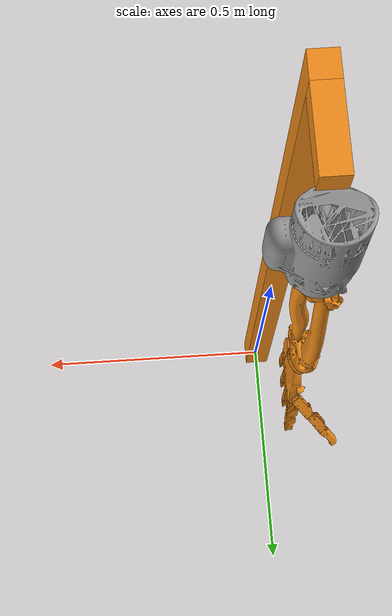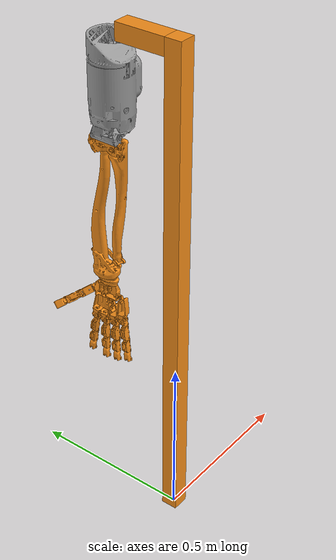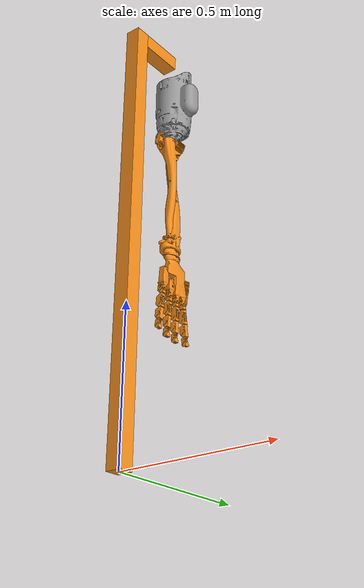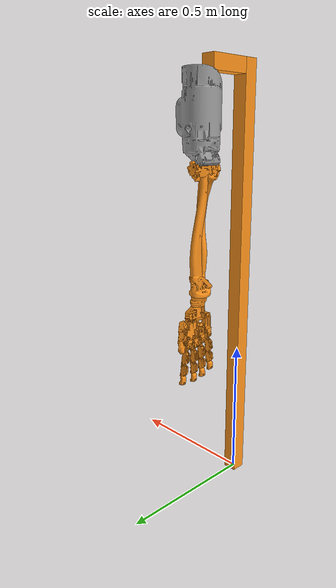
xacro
<?xml version="1.0"?>
<robot name="rrbot" xmlns:xacro="http://www.ros.org/wiki/xacro">

  <!-- Constants for robot dimensions -->
  <xacro:property name="PI" value="3.1415926535897931"/>
  <xacro:property name="mass" value="2.0" /> <!-- arbitrary value for mass -->
  <xacro:property name="width" value="0.05" /> <!-- Square dimensions (widthxwidth) of beams -->
  <xacro:property name="ry" value="0.016" />
  <xacro:property name="rz" value="0.02" />
  <xacro:property name="height1" value="1.5" /> <!-- Link 1 -->
  <xacro:property name="height2" value="0.25" /> <!-- Link 2 -->
  <xacro:property name="height3" value="0.4" /> <!-- Link 3 -->
  <xacro:property name="height4" value="0.4" /><!-- Link4 -->

  <xacro:property name="height_w1" value="0.03" />
  <xacro:property name="width_w1" value="0.02" />
  <xacro:property name="mass_w1" value="1" />

  <xacro:property name="height_w2" value="0.03" />
  <xacro:property name="width_w2" value="0.02" />
  <xacro:property name="mass_w2" value="1" />

  <xacro:property name="height_p" value="0.1" />
  <xacro:property name="width_p" value="0.09" />
  <xacro:property name="mass_p" value="1" />

  <xacro:property name="height_t" value="0.03" />
  <xacro:property name="width_t" value="0.02" />
  <xacro:property name="mass_t" value="1" />

  <xacro:property name="height_i" value="0.03" />
  <xacro:property name="width_i" value="0.02" />
  <xacro:property name="mass_i" value="1" />

  <xacro:property name="height_m" value="0.03" />
  <xacro:property name="width_m" value="0.02" />
  <xacro:property name="mass_m" value="1" />

  <xacro:property name="height_s" value="0.03" />
  <xacro:property name="width_s" value="0.02" />
  <xacro:property name="mass_s" value="1" />

  <xacro:property name="height_l" value="0.03" />
  <xacro:property name="width_l" value="0.02" />
  <xacro:property name="mass_l" value="1" />

  <xacro:property name="rl" value="${sqrt((rz+height4)*(rz+height4)+ry*ry)}" />
  <xacro:property name="model_scale" value="0.6 0.6 0.6" />
  <xacro:property name="model_humerus" value="package://rrbot_description/meshes/humerus_0.1_r.dae" />
  <xacro:property name="model_radius" value="package://rrbot_description/meshes/radius_0.1_t.dae" />
  <xacro:property name="model_ulna" value="package://rrbot_description/meshes/ulna_0.1_r.dae" />
  <xacro:property name="model_hand" value="package://rrbot_description/meshes/hand.dae" />
  <xacro:property name="model_wrist1" value="package://rrbot_description/meshes/hand/wrist1.dae" />
  <xacro:property name="model_wrist2" value="package://rrbot_description/meshes/hand/wrist2.dae" />
  <xacro:property name="model_palm" value="package://rrbot_description/meshes/hand/palm.dae" />
<xacro:property name="model_thumb1" value="package://rrbot_description/meshes/hand/thumb1.dae" />
<xacro:property name="model_thumb2" value="package://rrbot_description/meshes/hand/thumb2.dae" />
<xacro:property name="model_thumb3" value="package://rrbot_description/meshes/hand/thumb3.dae" />
<xacro:property name="model_index1" value="package://rrbot_description/meshes/hand/index1.dae" />
<xacro:property name="model_index2" value="package://rrbot_description/meshes/hand/index2.dae" />
<xacro:property name="model_index3" value="package://rrbot_description/meshes/hand/index3.dae" />

  <!-- Import all Gazebo-customization elements, including Gazebo colors -->
  <xacro:include filename="$(find rrbot_description)/urdf/rrbot.gazebo" />
  <!-- Import Rviz colors -->
  <xacro:include filename="$(find rrbot_description)/urdf/materials.xacro" />

  <!-- Used for fixing robot to Gazebo 'base_link' -->
  <link name="world"/>

  <joint name="fixed" type="fixed">
    <parent link="world"/>
    <child link="link1"/>
  </joint>

  <!-- Base Link -->
  <link name="link1">
    <collision>
      <origin xyz="0 0 ${height1/2}" rpy="0 0 0"/>
      <geometry>
	<box size="${width} ${width} ${height1}"/>
      </geometry>
    </collision>

    <visual>
      <origin xyz="0 0 ${height1/2}" rpy="0 0 0"/>
      <geometry>
	<box size="${width} ${width} ${height1}"/>
      </geometry>
      <material name="orange"/>
    </visual>

    <inertial>
      <origin xyz="0 0 ${height1/2}" rpy="0 0 0"/>
      <mass value="${mass}"/>
      <inertia
	  ixx="${mass / 1.0  * (width*width + height1*height1)}" ixy="0.0" ixz="0.0"
	  iyy="${mass / 1.0  * (height1*height1 + width*width)}" iyz="0.0"
	  izz="${mass / 1.0  * (width*width + width*width)}"/>
    </inertial>
  </link>

  <joint name="joint_bridge" type="fixed">
    <parent link="link1"/>
    <child link="link_bridge"/>
	<origin xyz="0 ${width} ${height1 - width/2}" rpy="0 0 0"/>
    <axis xyz="0 1 0"/>
    <dynamics damping="0.7"/>
  </joint>

  <link name="link_bridge">
    <collision>
		<origin xyz="0 ${width*3/2} 0" rpy="0 0 0"/>
      <geometry>
	<box size="${width} ${width*3} ${width}"/>
      </geometry>
    </collision>

    <visual>
		<origin xyz="0 ${width} 0" rpy="0 0 0"/>
      <geometry>
	<box size="${width} ${width*3} ${width}"/>
      </geometry>
      <material name="orange"/>
    </visual>

    <inertial>
		<origin xyz="0 ${width} 0" rpy="0 0 0"/>
      <mass value="${mass}"/>
      <inertia
	  ixx="${mass / 1.0  * (width*width + width*width)}" ixy="0.0" ixz="0.0"
	  iyy="${mass / 1.0  * (width*width + width*width)}" iyz="0.0"
	  izz="${mass / 1.0  * (width*width + width*width)}"/>
    </inertial>
  </link>

  <joint name="joint1" type="fixed">
    <parent link="link_bridge"/>
    <child link="link2"/>
	<origin xyz="0 ${width*3} -0.05" rpy="0 ${PI} 0"/>
    <axis xyz="0 1 0"/>
    <dynamics damping="0.7"/>
  </joint>

  <!-- Middle Link -->
  <link name="link2">
    <collision>
      <origin xyz="0 0 ${height2/2}" rpy="0 0 0"/>
      <geometry>
	<!--box size="${width} ${width} ${height2}"/-->
	<mesh filename="${model_humerus}" scale="${model_scale}" />

      </geometry>
    </collision>

    <visual>
      <origin xyz="0 0 ${height2/2}" rpy="0 0 0"/>
      <geometry>
		  <!--box size="${width} ${width} ${height2}"/-->
		<mesh filename="${model_humerus}" scale="${model_scale}" />
      </geometry>
      <!--material name="black"/-->
    </visual>

    <inertial>
      <origin xyz="0 0 ${height2/2}" rpy="0 0 0"/>
      <mass value="${mass}"/>
      <inertia
	  ixx="${mass / 1.0  * (width*width + height2*height2)}" ixy="0.0" ixz="0.0"
	  iyy="${mass / 1.0  * (height2*height2 + width*width)}" iyz="0.0"
	  izz="${mass / 1.0  * (width*width + width*width)}"/>
    </inertial>
  </link>

  <joint name="joint2" type="continuous">
    <parent link="link2"/>
    <child link="link3"/>
	<origin xyz="0.04 0 ${height2}" rpy="0 0 0"/>
	<axis xyz="0 1 0"/>
    <dynamics damping="0.7"/>
  </joint>

  <link name="link3">
    <collision>
		<origin xyz="0 0 ${height3/2}" rpy="0 0 0"/>
      <geometry>
		  <!--box size="${width} ${width} ${height3}"/-->
		<mesh filename="${model_ulna}" scale="${model_scale}" />

      </geometry>
    </collision>

    <visual>
		<origin xyz="0 0 ${height3/2}" rpy="0 0 0"/>
      <geometry>
	<!--box size="${width} ${width} ${height3}"/-->
	<mesh filename="${model_ulna}" scale="${model_scale}" />

      </geometry>
      <material name="orange"/>
    </visual>

    <inertial>
		<origin xyz="0 0 ${height3/2}" rpy="0 0 0"/>
      <mass value="${mass}"/>
      <inertia
	  ixx="${mass / 1.0  * (width*width + height3*height3)}" ixy="0.0" ixz="0.0"
	  iyy="${mass / 1.0  * (height3*height3 + width*width)}" iyz="0.0"
	  izz="${mass / 1.0  * (width*width + width*width)}"/>
    </inertial>
  </link>

  <joint name="joint3" type="continuous">
    <parent link="link3"/>
    <child link="link4"/>
	<origin xyz="-0.014 ${ry} ${rz}" rpy="0 0 0"/>
	<axis xyz="0 ${-ry/rl} ${(rz+height4)/rl}"/>
	<!--axis xyz="0 0 1" /-->
    <dynamics damping="0.7"/>
  </joint>

  <link name="link4">
    <collision>
		<origin xyz="0 0 ${height4/2}" rpy="0 0 0"/>
      <geometry>
		  <!--box size="${width} ${width} ${height4}"/-->
     	<mesh filename="${model_radius}" scale="${model_scale}" />
      </geometry>
    </collision>

    <visual>
		<origin xyz="0 0 ${height4/2}" rpy="0 0 0"/>
      <geometry>
		<!--box size="${width} ${width} ${height4}"/-->
		<mesh filename="${model_radius}" scale="${model_scale}" />

      </geometry>
      <material name="orange"/>
    </visual>

    <inertial>
		<origin xyz="0 0 ${height4/2}" rpy="0 0 0"/>
      <mass value="${mass}"/>
      <inertia
	  ixx="${mass / 1.0  * (width*width + height4*height4)}" ixy="0.0" ixz="0.0"
	  iyy="${mass / 1.0  * (height4*height4 + width*width)}" iyz="0.0"
	  izz="${mass / 1.0  * (width*width + width*width)}"/>
    </inertial>
  </link>

<!--********************* WRIST *********************** -->
  <joint name="wrist_joint1" type="continuous">
    <parent link="link4"/>
    <child link="wrist_link1"/>
		<origin xyz="-0.0025 0 ${height4-0.01}" rpy="0 0 0"/>
	<axis xyz="0 1 0"/>
    <dynamics damping="0.7"/>
  </joint>

  <link name="wrist_link1">
    <collision>
		<origin xyz="0 0 ${height_w1/2}" rpy="0 0 0"/>
      <geometry>
		  <!--box size="${width_w1} ${width_w1*4} ${height_w1}"/-->
     	<mesh filename="${model_wrist1}" scale="0 0 0" />
      </geometry>
    </collision>

    <visual>
		<origin xyz="0 0 ${height_w1/2}" rpy="0 0 0"/>
      <geometry>
		<!--box size="${width_w1} ${width_w1*4} ${height_w1}"/-->
		<mesh filename="${model_wrist1}" scale="${model_scale}" />
      </geometry>
      <material name="orange"/>
    </visual>

    <inertial>
		<origin xyz="0 0 ${height_w1/2}" rpy="0 0 0"/>
      <mass value="${mass_w1}"/>
      <inertia
	  ixx="${mass_w1 / 1.0  * (width_w1*width_w1 + height_w1*height_w1)}" ixy="0.0" ixz="0.0"
	  iyy="${mass_w1 / 1.0  * (height_w1*height_w1 + width_w1*width_w1)}" iyz="0.0"
	  izz="${mass_w1 / 1.0  * (width_w1*width_w1 + width_w1*width_w1)}"/>
    </inertial>
  </link>

  <joint name="wrist_joint2" type="continuous">
    <parent link="wrist_link1"/>
    <child link="wrist_link2"/>
		<origin xyz="-0.01 0 ${height_w2-0.001}" rpy="0 0 0"/>
	<axis xyz="0 1 0"/>
    <dynamics damping="0.7"/>
  </joint>

  <link name="wrist_link2">
    <collision>
		<origin xyz="0 0 ${height_w2/2}" rpy="0 0 0"/>
      <geometry>
		  <!--box size="${width_w2} ${width_w2*4} ${height_w2}"/-->
     	<mesh filename="${model_wrist2}" scale="0 0 0" />
      </geometry>
    </collision>

    <visual>
		<origin xyz="0 0 ${height_w2/2}" rpy="0 0 0"/>
      <geometry>
		<!--box size="${width_w2} ${width_w2*4} ${height_w2}"/-->
		<mesh filename="${model_wrist2}" scale="${model_scale}" />
      </geometry>
      <material name="orange"/>
    </visual>

    <inertial>
		<origin xyz="0 0 ${height_w2/2}" rpy="0 0 0"/>
      <mass value="${mass_w2}"/>
      <inertia
	  ixx="${mass_w2 / 1.0  * (width_w2*width_w2 + height_w2*height_w2)}" ixy="0.0" ixz="0.0"
	  iyy="${mass_w2 / 1.0  * (height_w2*height_w2 + width_w2*width_w2)}" iyz="0.0"
	  izz="${mass_w2 / 1.0  * (width_w2*width_w2 + width_w2*width_w2)}"/>
    </inertial>
  </link>

  <joint name="wrist_connector" type="fixed">
	  <parent link="wrist_link2"/>
	  <child link="palm"/>
	  <origin xyz="-0.009 0.013 ${height_w2+0.013}" rpy="0 0 0"/>
  </joint>

<!--**************** Palm ********************-->
  <link name="palm">
    <collision>
		<origin xyz="0 0 ${height_p/2}" rpy="0 0 0"/>
      <geometry>
		  <!--box size="${width/2} ${width_p} ${height_p}"/-->
		<mesh filename="${model_palm}" scale="${model_scale}" />

      </geometry>
    </collision>

    <visual>
		<origin xyz="0 0 ${height_p/2}" rpy="0 0 0"/>
      <geometry>
		  <!--box size="${width/2} ${width_p} ${height_p}"/-->
		<mesh filename="${model_palm}" scale="${model_scale}" />

      </geometry>
      <material name="orange"/>
    </visual>

    <inertial>
		<origin xyz="0 0 ${height_p/2}" rpy="0 0 0"/>
      <mass value="${mass}"/>
      <inertia
	  ixx="${mass*3 / 1.0  * (width_p*width_p + height_p*height_p)}" ixy="0.0" ixz="0.0"
	  iyy="${mass*3 / 1.0  * (height_p*height_p + width*width)}" iyz="0.0"
	  izz="${mass*3 / 1.0  * (width_p*width_p + width*width)}"/>
    </inertial>
  </link>

  <!--******************* THUMB **********************-->

  <joint name="thumb_joint1" type="continuous">
    <parent link="palm"/>
    <child link="thumb_link1"/>
	<origin xyz="0.01 ${width_p/2+0.02} 0.025" rpy="${-PI/3} ${PI/8} ${-PI/6}"/>
	<axis xyz="0 1 0"/>
    <dynamics damping="0.7"/>
  </joint>

  <link name="thumb_link1">
    <collision>
		<origin xyz="0 0 ${height_t/2}" rpy="0 0 0"/>
      <geometry>
		  <box size="${width_t} ${width_t} ${height_t}"/>
      </geometry>
    </collision>

    <visual>
		<origin xyz="0 0 ${height_t/2}" rpy="0 0 0"/>
      <geometry>
		  <!--box size="${width_t} ${width_t} ${height_t}"/-->
		  <mesh filename="${model_thumb1}" scale="${model_scale}" />
      </geometry>
      <material name="orange"/>
    </visual>

    <inertial>
		<origin xyz="0 0 ${height_t/2}" rpy="0 0 0"/>
      <mass value="${mass_t}"/>
      <inertia
		  ixx="${mass_t * (width_t*width_t + height_t*height_t) / 1.0  }" ixy="0.0" ixz="0.0"
		  iyy="${mass_t * (height_t*height_t + width_t*width_t) / 1.0  }" iyz="0.0"
		  izz="${mass_t * (width_t*width_t + width_t*width_t) / 1.0  }"/>
    </inertial>
  </link>

  <joint name="thumb_joint2" type="continuous">
    <parent link="thumb_link1"/>
    <child link="thumb_link2"/>
	<origin xyz="0 0 ${height_t+0.01}" rpy="0 0 0"/>
	<axis xyz="0 1 0"/>
    <dynamics damping="0.7"/>
  </joint>

  <link name="thumb_link2">
    <collision>
		<origin xyz="0 0 ${height_t/2}" rpy="0 0 0"/>
      <geometry>
		  <box size="${width_t} ${width_t} ${height_t}"/>

      </geometry>
    </collision>

    <visual>
		<origin xyz="0 0 ${height_t/2}" rpy="0 0 0"/>
      <geometry>
		  <!--box size="${width_t} ${width_t} ${height_t}"/-->
		  <mesh filename="${model_thumb2}" scale="${model_scale}" />

      </geometry>
      <material name="orange"/>
    </visual>

    <inertial>
		<origin xyz="0 0 ${height_t/2}" rpy="0 0 0"/>
      <mass value="${mass_t}"/>
      <inertia
		  ixx="${mass_t * (width_t*width_t + height_t*height_t)/1.0}" ixy="0.0" ixz="0.0"
		  iyy="${mass_t * (height_t*height_t + width_t*width_t)/1.0}" iyz="0.0"
		  izz="${mass_t * (width_t*width_t + width_t*width_t)/1.0}"/>
    </inertial>
  </link>

  <joint name="thumb_joint3" type="continuous">
    <parent link="thumb_link2"/>
    <child link="thumb_link3"/>
	<origin xyz="0 0 ${height_t+0.01}" rpy="0 0 0"/>
	<axis xyz="0 1 0"/>
    <dynamics damping="0.7"/>
  </joint>

  <link name="thumb_link3">
    <collision>
		<origin xyz="0 0 ${height_t/2}" rpy="0 0 0"/>
      <geometry>
		  <box size="${width_t} ${width_t} ${height_t}"/>

      </geometry>
    </collision>

    <visual>
		<origin xyz="0 0 ${height_t/2}" rpy="0 0 0"/>
      <geometry>
		  <!--box size="${width_t} ${width_t} ${height_t}"/-->
		  <mesh filename="${model_thumb3}" scale="${model_scale}" />
      </geometry>
      <material name="orange"/>
    </visual>

    <inertial>
		<origin xyz="0 0 ${height_t/2}" rpy="0 0 0"/>
      <mass value="${mass_t}"/>
      <inertia
		  ixx="${mass_t * (width_t*width_t + height_t*height_t)/1.0}" ixy="0.0" ixz="0.0"
		  iyy="${mass_t * (height_t*height_t + width_t*width_t)/1.0}" iyz="0.0"
		  izz="${mass_t * (width_t*width_t + width_t*width_t)/1.0}"/>
    </inertial>
  </link>

  <!--***************** INDEX *********************-->

<joint name="index_joint1" type="continuous">
    <parent link="palm"/>
    <child link="index_link1"/>
	<origin xyz="0.008 ${width_p/2+0.004} ${height_p+0.03}" rpy="${-PI/20} 0 0"/>
	<axis xyz="0 1 0"/>
    <dynamics damping="0.7"/>
  </joint>

  <link name="index_link1">
    <collision>
		<origin xyz="0 0 ${height_i/2}" rpy="0 0 0"/>
      <geometry>
		  <box size="${width_i} ${width_i} ${height_i}"/>

      </geometry>
    </collision>

    <visual>
		<origin xyz="0 0 ${height_i/2}" rpy="0 0 0"/>
      <geometry>
		  <!--box size="${width_i} ${width_i} ${height_i}"/-->
		  <mesh filename="${model_index1}" scale="${model_scale}" />

      </geometry>
      <material name="orange"/>
    </visual>

    <inertial>
		<origin xyz="0 0 ${height_i/2}" rpy="0 0 0"/>
      <mass value="${mass_i}"/>
      <inertia
		  ixx="${mass_i * (width_i*width_i + height_i*height_i) / 1.0  }" ixy="0.0" ixz="0.0"
		  iyy="${mass_i * (height_i*height_i + width_i*width_i) / 1.0  }" iyz="0.0"
		  izz="${mass_i * (width_i*width_i + width_i*width_i) / 1.0  }"/>
    </inertial>
  </link>

  <joint name="index_joint2" type="continuous">
    <parent link="index_link1"/>
    <child link="index_link2"/>
	<origin xyz="0 0 ${height_i+0.01}" rpy="0 0 0"/>
	<axis xyz="0 1 0"/>
    <dynamics damping="0.7"/>
  </joint>

  <link name="index_link2">
    <collision>
		<origin xyz="0 0 ${height_i/2}" rpy="0 0 0"/>
      <geometry>
		  <box size="${width_i} ${width_i} ${height_i}"/>

      </geometry>
    </collision>

    <visual>
		<origin xyz="0 0 ${height_i/2}" rpy="0 0 0"/>
      <geometry>
		  <!--box size="${width_i} ${width_i} ${height_i}"/-->
		  <mesh filename="${model_index2}" scale="${model_scale}" />
      </geometry>
      <material name="orange"/>
    </visual>

    <inertial>
		<origin xyz="0 0 ${height_i/2}" rpy="0 0 0"/>
      <mass value="${mass_i}"/>
      <inertia
		  ixx="${mass_i * (width_i*width_i + height_i*height_i)/1.0}" ixy="0.0" ixz="0.0"
		  iyy="${mass_i * (height_i*height_i + width_i*width_i)/1.0}" iyz="0.0"
		  izz="${mass_i * (width_i*width_i + width_i*width_i)/1.0}"/>
    </inertial>
  </link>

  <joint name="index_joint3" type="continuous">
    <parent link="index_link2"/>
    <child link="index_link3"/>
	<origin xyz="0 0 ${height_i+0.01}" rpy="0 0 0"/>
	<axis xyz="0 1 0"/>
    <dynamics damping="0.7"/>
  </joint>

  <link name="index_link3">
    <collision>
		<origin xyz="0 0 ${height_i/2}" rpy="0 0 0"/>
      <geometry>
		  <box size="${width_i} ${width_i} ${height_i}"/>

      </geometry>
    </collision>

    <visual>
		<origin xyz="0 0 ${height_i/2}" rpy="0 0 0"/>
      <geometry>
		  <!--box size="${width_i} ${width_i} ${height_i}"/-->
		  <mesh filename="${model_index3}" scale="${model_scale}" />
      </geometry>
      <material name="orange"/>
    </visual>

    <inertial>
		<origin xyz="0 0 ${height_i/2}" rpy="0 0 0"/>
      <mass value="${mass_i}"/>
      <inertia
		  ixx="${mass_i * (width_i*width_i + height_i*height_i)/1.0}" ixy="0.0" ixz="0.0"
		  iyy="${mass_i * (height_i*height_i + width_i*width_i)/1.0}" iyz="0.0"
		  izz="${mass_i * (width_i*width_i + width_i*width_i)/1.0}"/>
    </inertial>
  </link>

  <!--***************** MIDDLE *********************-->

  <joint name="middle_joint1" type="continuous">
    <parent link="palm"/>
    <child link="middle_link1"/>
	<origin xyz="0.008 ${width_p/2-0.033} ${height_p+0.033}" rpy="0 0 0"/>
	<axis xyz="0 1 0"/>
    <dynamics damping="0.7"/>
  </joint>

  <link name="middle_link1">
    <collision>
		<origin xyz="0 0 ${height_m/2}" rpy="0 0 0"/>
      <geometry>
		  <box size="${width_m} ${width_m} ${height_m}"/>

      </geometry>
    </collision>

    <visual>
		<origin xyz="0 0 ${height_m/2}" rpy="0 0 0"/>
      <geometry>
		  <!--box size="${width_m} ${width_m} ${height_m}"/-->
		<mesh filename="${model_index1}" scale="${model_scale}" />

      </geometry>
      <material name="orange"/>
    </visual>

    <inertial>
		<origin xyz="0 0 ${height_m/2}" rpy="0 0 0"/>
      <mass value="${mass_m}"/>
      <inertia
		  ixx="${mass_m * (width_m*width_m + height_m*height_m) / 1.0  }" ixy="0.0" ixz="0.0"
		  iyy="${mass_m * (height_m*height_m + width_m*width_m) / 1.0  }" iyz="0.0"
		  izz="${mass_m * (width_m*width_m + width_m*width_m) / 1.0  }"/>
    </inertial>
  </link>

  <joint name="middle_joint2" type="continuous">
    <parent link="middle_link1"/>
    <child link="middle_link2"/>
	<origin xyz="0 0 ${height_m+0.01}" rpy="0 0 0"/>
	<axis xyz="0 1 0"/>
    <dynamics damping="0.7"/>
  </joint>

  <link name="middle_link2">
    <collision>
		<origin xyz="0 0 ${height_m/2}" rpy="0 0 0"/>
      <geometry>
		  <box size="${width_m} ${width_m} ${height_m}"/>
      </geometry>
    </collision>

    <visual>
		<origin xyz="0 0 ${height_m/2}" rpy="0 0 0"/>
      <geometry>
		  <!--box size="${width_m} ${width_m} ${height_m}"/-->
		  <mesh filename="${model_index2}" scale="${model_scale}" />

      </geometry>
      <material name="orange"/>
    </visual>

    <inertial>
		<origin xyz="0 0 ${height_m/2}" rpy="0 0 0"/>
      <mass value="${mass_m}"/>
      <inertia
		  ixx="${mass_m * (width_m*width_m + height_m*height_m)/1.0}" ixy="0.0" ixz="0.0"
		  iyy="${mass_m * (height_m*height_m + width_m*width_m)/1.0}" iyz="0.0"
		  izz="${mass_m * (width_m*width_m + width_m*width_m)/1.0}"/>
    </inertial>
  </link>

  <joint name="middle_joint3" type="continuous">
    <parent link="middle_link2"/>
    <child link="middle_link3"/>
	<origin xyz="0 0 ${height_m+0.01}" rpy="0 0 0"/>
	<axis xyz="0 1 0"/>
    <dynamics damping="0.7"/>
  </joint>

  <link name="middle_link3">
    <collision>
		<origin xyz="0 0 ${height_m/2}" rpy="0 0 0"/>
      <geometry>
		  <box size="${width_m} ${width_m} ${height_m}"/>
      </geometry>
    </collision>

    <visual>
		<origin xyz="0 0 ${height_m/2}" rpy="0 0 0"/>
      <geometry>
		  <!--box size="${width_m} ${width_m} ${height_m}"/-->
		  <mesh filename="${model_index3}" scale="${model_scale}" />
      </geometry>
      <material name="orange"/>
    </visual>

    <inertial>
		<origin xyz="0 0 ${height_m/2}" rpy="0 0 0"/>
      <mass value="${mass_m}"/>
      <inertia
		  ixx="${mass_m * (width_m*width_m + height_m*height_m)/1.0}" ixy="0.0" ixz="0.0"
		  iyy="${mass_m * (height_m*height_m + width_m*width_m)/1.0}" iyz="0.0"
		  izz="${mass_m * (width_m*width_m + width_m*width_m)/1.0}"/>
    </inertial>
  </link>

  <!--***************** SMALL *********************-->

<joint name="small_joint1" type="continuous">
    <parent link="palm"/>
    <child link="small_link1"/>
	<origin xyz="0.008 ${width_p/2-0.068} ${height_p+0.027}" rpy="${PI/60} 0 0"/>
	<axis xyz="0 1 0"/>
    <dynamics damping="0.7"/>
  </joint>

  <link name="small_link1">
    <collision>
		<origin xyz="0 0 ${height_s/2}" rpy="0 0 0"/>
      <geometry>
		  <box size="${width_s} ${width_s} ${height_s}"/>

      </geometry>
    </collision>

    <visual>
		<origin xyz="0 0 ${height_s/2}" rpy="0 0 0"/>
      <geometry>
		  <!--box size="${width_s} ${width_s} ${height_s}"/-->
		  <mesh filename="${model_index1}" scale="${model_scale}" />

      </geometry>
      <material name="orange"/>
    </visual>

    <inertial>
		<origin xyz="0 0 ${height_s/2}" rpy="0 0 0"/>
      <mass value="${mass_s}"/>
      <inertia
		  ixx="${mass_s * (width_s*width_s + height_s*height_s) / 1.0  }" ixy="0.0" ixz="0.0"
		  iyy="${mass_s * (height_s*height_s + width_s*width_s) / 1.0  }" iyz="0.0"
		  izz="${mass_s * (width_s*width_s + width_s*width_s) / 1.0  }"/>
    </inertial>
  </link>

  <joint name="small_joint2" type="continuous">
    <parent link="small_link1"/>
    <child link="small_link2"/>
	<origin xyz="0 0 ${height_s+0.01}" rpy="0 0 0"/>
	<axis xyz="0 1 0"/>
    <dynamics damping="0.7"/>
  </joint>

  <link name="small_link2">
    <collision>
		<origin xyz="0 0 ${height_s/2}" rpy="0 0 0"/>
      <geometry>
		  <box size="${width_s} ${width_s} ${height_s}"/>

      </geometry>
    </collision>

    <visual>
		<origin xyz="0 0 ${height_s/2}" rpy="0 0 0"/>
      <geometry>
		  <!--box size="${width_s} ${width_s} ${height_s}"/-->
		  <mesh filename="${model_index2}" scale="${model_scale}" />

      </geometry>
      <material name="orange"/>
    </visual>

    <inertial>
		<origin xyz="0 0 ${height_s/2}" rpy="0 0 0"/>
      <mass value="${mass_s}"/>
      <inertia
		  ixx="${mass_s * (width_s*width_s + height_s*height_s)/1.0}" ixy="0.0" ixz="0.0"
		  iyy="${mass_s * (height_s*height_s + width_s*width_s)/1.0}" iyz="0.0"
		  izz="${mass_s * (width_s*width_s + width_s*width_s)/1.0}"/>
    </inertial>
  </link>

  <joint name="small_joint3" type="continuous">
    <parent link="small_link2"/>
    <child link="small_link3"/>
	<origin xyz="0 0 ${height_s+0.01}" rpy="0 0 0"/>
	<axis xyz="0 1 0"/>
    <dynamics damping="0.7"/>
  </joint>

  <link name="small_link3">
    <collision>
		<origin xyz="0 0 ${height_s/2}" rpy="0 0 0"/>
      <geometry>
		  <box size="${width_s} ${width_s} ${height_s}"/>

      </geometry>
    </collision>

    <visual>
		<origin xyz="0 0 ${height_s/2}" rpy="0 0 0"/>
      <geometry>
		  <!--box size="${width_s} ${width_s} ${height_s}"/-->
		  <mesh filename="${model_index3}" scale="${model_scale}" />
      </geometry>
      <material name="orange"/>
    </visual>

    <inertial>
		<origin xyz="0 0 ${height_s/2}" rpy="0 0 0"/>
      <mass value="${mass_s}"/>
      <inertia
		  ixx="${mass_s * (width_s*width_s + height_s*height_s)/1.0}" ixy="0.0" ixz="0.0"
		  iyy="${mass_s * (height_s*height_s + width_s*width_s)/1.0}" iyz="0.0"
		  izz="${mass_s * (width_s*width_s + width_s*width_s)/1.0}"/>
    </inertial>
  </link>

   <!--***************** LITTLE *********************-->

<joint name="little_joint1" type="continuous">
    <parent link="palm"/>
    <child link="little_link1"/>
	<origin xyz="0.008 ${width_p/2-0.102} ${height_p+0.012}" rpy="${PI/30} 0 0"/>
	<axis xyz="0 1 0"/>
    <dynamics damping="0.7"/>
  </joint>

  <link name="little_link1">
    <collision>
		<origin xyz="0 0 ${height_l/2}" rpy="0 0 0"/>
      <geometry>
		  <box size="${width_l} ${width_l} ${height_l}"/>

      </geometry>
    </collision>

    <visual>
		<origin xyz="0 0 ${height_l/2}" rpy="0 0 0"/>
      <geometry>
		  <!--box size="${width_l} ${width_l} ${height_l}"/-->
		  <mesh filename="${model_index1}" scale="${model_scale}" />

      </geometry>
      <material name="orange"/>
    </visual>

    <inertial>
		<origin xyz="0 0 ${height_l/2}" rpy="0 0 0"/>
      <mass value="${mass_l}"/>
      <inertia
		  ixx="${mass_l * (width_l*width_l + height_l*height_l) / 1.0  }" ixy="0.0" ixz="0.0"
		  iyy="${mass_l * (height_l*height_l + width_l*width_l) / 1.0  }" iyz="0.0"
		  izz="${mass_l * (width_l*width_l + width_l*width_l) / 1.0  }"/>
    </inertial>
  </link>

  <joint name="little_joint2" type="continuous">
    <parent link="little_link1"/>
    <child link="little_link2"/>
	<origin xyz="0 0 ${height_l+0.01}" rpy="0 0 0"/>
	<axis xyz="0 1 0"/>
    <dynamics damping="0.7"/>
  </joint>

  <link name="little_link2">
    <collision>
		<origin xyz="0 0 ${height_l/2}" rpy="0 0 0"/>
      <geometry>
		  <box size="${width_l} ${width_l} ${height_l}"/>

      </geometry>
    </collision>

    <visual>
		<origin xyz="0 0 ${height_l/2}" rpy="0 0 0"/>
      <geometry>
		  <!--box size="${width_l} ${width_l} ${height_l}"/-->
		  <mesh filename="${model_index2}" scale="${model_scale}" />

      </geometry>
      <material name="orange"/>
    </visual>

    <inertial>
		<origin xyz="0 0 ${height_l/2}" rpy="0 0 0"/>
      <mass value="${mass_l}"/>
      <inertia
		  ixx="${mass_l * (width_l*width_l + height_l*height_l)/1.0}" ixy="0.0" ixz="0.0"
		  iyy="${mass_l * (height_l*height_l + width_l*width_l)/1.0}" iyz="0.0"
		  izz="${mass_l * (width_l*width_l + width_l*width_l)/1.0}"/>
    </inertial>
  </link>

  <joint name="little_joint3" type="continuous">
    <parent link="little_link2"/>
    <child link="little_link3"/>
	<origin xyz="0 0 ${height_l+0.01}" rpy="0 0 0"/>
	<axis xyz="0 1 0"/>
    <dynamics damping="0.7"/>
  </joint>

  <link name="little_link3">
    <collision>
		<origin xyz="0 0 ${height_l/2}" rpy="0 0 0"/>
      <geometry>
		  <box size="${width_l} ${width_l} ${height_l}"/>

      </geometry>
    </collision>

    <visual>
		<origin xyz="0 0 ${height_l/2}" rpy="0 0 0"/>
      <geometry>
		  <!--box size="${width_l} ${width_l} ${height_l}"/-->
		  <mesh filename="${model_index3}" scale="${model_scale}" />

      </geometry>
      <material name="orange"/>
    </visual>

    <inertial>
		<origin xyz="0 0 ${height_l/2}" rpy="0 0 0"/>
      <mass value="${mass_l}"/>
      <inertia
		  ixx="${mass_l * (width_l*width_l + height_l*height_l)/1.0}" ixy="0.0" ixz="0.0"
		  iyy="${mass_l * (height_l*height_l + width_l*width_l)/1.0}" iyz="0.0"
		  izz="${mass_l * (width_l*width_l + width_l*width_l)/1.0}"/>
    </inertial>
  </link>

  <transmission name="tran2">
    <type>transmission_interface/SimpleTransmission</type>
    <joint name="joint2">
      <hardwareInterface>EffortJointInterface</hardwareInterface>
    </joint>
    <actuator name="motor2">
      <hardwareInterface>EffortJointInterface</hardwareInterface>
      <mechanicalReduction>100</mechanicalReduction>
    </actuator>
  </transmission>

  <transmission name="tran3">
    <type>transmission_interface/SimpleTransmission</type>
    <joint name="joint3">
      <hardwareInterface>EffortJointInterface</hardwareInterface>
    </joint>
    <actuator name="motor3">
      <hardwareInterface>EffortJointInterface</hardwareInterface>
      <mechanicalReduction>100</mechanicalReduction>
    </actuator>
  </transmission>

  <transmission name="tran_wrist1">
    <type>transmission_interface/SimpleTransmission</type>
    <joint name="wrist_joint1">
      <hardwareInterface>EffortJointInterface</hardwareInterface>
    </joint>
    <actuator name="wrist_joint1">
      <hardwareInterface>EffortJointInterface</hardwareInterface>
      <mechanicalReduction>100</mechanicalReduction>
    </actuator>
  </transmission>

  <transmission name="tran_wrist2">
    <type>transmission_interface/SimpleTransmission</type>
    <joint name="wrist_joint2">
      <hardwareInterface>EffortJointInterface</hardwareInterface>
    </joint>
    <actuator name="wrist_joint2">
      <hardwareInterface>EffortJointInterface</hardwareInterface>
      <mechanicalReduction>100</mechanicalReduction>
    </actuator>
  </transmission>

  <transmission name="tran_thumb1">
    <type>transmission_interface/SimpleTransmission</type>
    <joint name="thumb_joint1">
      <hardwareInterface>EffortJointInterface</hardwareInterface>
    </joint>
    <actuator name="thumb_joint1">
      <hardwareInterface>EffortJointInterface</hardwareInterface>
      <mechanicalReduction>100</mechanicalReduction>
    </actuator>
  </transmission>

  <transmission name="tran_thumb2">
    <type>transmission_interface/SimpleTransmission</type>
    <joint name="thumb_joint2">
      <hardwareInterface>EffortJointInterface</hardwareInterface>
    </joint>
    <actuator name="thumb_joint2">
      <hardwareInterface>EffortJointInterface</hardwareInterface>
      <mechanicalReduction>100</mechanicalReduction>
    </actuator>
  </transmission>

  <transmission name="tran_thumb3">
    <type>transmission_interface/SimpleTransmission</type>
    <joint name="thumb_joint3">
      <hardwareInterface>EffortJointInterface</hardwareInterface>
    </joint>
    <actuator name="thumb_joint3">
      <hardwareInterface>EffortJointInterface</hardwareInterface>
      <mechanicalReduction>100</mechanicalReduction>
    </actuator>
  </transmission>

  <transmission name="tran_index1">
    <type>transmission_interface/SimpleTransmission</type>
    <joint name="index_joint1">
      <hardwareInterface>EffortJointInterface</hardwareInterface>
    </joint>
    <actuator name="index_joint1">
      <hardwareInterface>EffortJointInterface</hardwareInterface>
      <mechanicalReduction>100</mechanicalReduction>
    </actuator>
  </transmission>

  <transmission name="tran_index2">
    <type>transmission_interface/SimpleTransmission</type>
    <joint name="index_joint2">
      <hardwareInterface>EffortJointInterface</hardwareInterface>
    </joint>
    <actuator name="index_joint2">
      <hardwareInterface>EffortJointInterface</hardwareInterface>
      <mechanicalReduction>100</mechanicalReduction>
    </actuator>
  </transmission>

  <transmission name="tran_index3">
    <type>transmission_interface/SimpleTransmission</type>
    <joint name="index_joint3">
      <hardwareInterface>EffortJointInterface</hardwareInterface>
    </joint>
    <actuator name="index_joint3">
      <hardwareInterface>EffortJointInterface</hardwareInterface>
      <mechanicalReduction>100</mechanicalReduction>
    </actuator>
  </transmission>

  <transmission name="tran_middle1">
    <type>transmission_interface/SimpleTransmission</type>
    <joint name="middle_joint1">
      <hardwareInterface>EffortJointInterface</hardwareInterface>
    </joint>
    <actuator name="middle_joint1">
      <hardwareInterface>EffortJointInterface</hardwareInterface>
      <mechanicalReduction>100</mechanicalReduction>
    </actuator>
  </transmission>

  <transmission name="tran_middle2">
    <type>transmission_interface/SimpleTransmission</type>
    <joint name="middle_joint2">
      <hardwareInterface>EffortJointInterface</hardwareInterface>
    </joint>
    <actuator name="middle_joint2">
      <hardwareInterface>EffortJointInterface</hardwareInterface>
      <mechanicalReduction>100</mechanicalReduction>
    </actuator>
  </transmission>

  <transmission name="tran_middle3">
    <type>transmission_interface/SimpleTransmission</type>
    <joint name="middle_joint3">
      <hardwareInterface>EffortJointInterface</hardwareInterface>
    </joint>
    <actuator name="middle_joint3">
      <hardwareInterface>EffortJointInterface</hardwareInterface>
      <mechanicalReduction>100</mechanicalReduction>
    </actuator>
  </transmission>

  <transmission name="tran_small1">
    <type>transmission_interface/SimpleTransmission</type>
    <joint name="small_joint1">
      <hardwareInterface>EffortJointInterface</hardwareInterface>
    </joint>
    <actuator name="small_joint1">
      <hardwareInterface>EffortJointInterface</hardwareInterface>
      <mechanicalReduction>100</mechanicalReduction>
    </actuator>
  </transmission>

  <transmission name="tran_small2">
    <type>transmission_interface/SimpleTransmission</type>
    <joint name="small_joint2">
      <hardwareInterface>EffortJointInterface</hardwareInterface>
    </joint>
    <actuator name="small_joint2">
      <hardwareInterface>EffortJointInterface</hardwareInterface>
      <mechanicalReduction>100</mechanicalReduction>
    </actuator>
  </transmission>

  <transmission name="tran_small3">
    <type>transmission_interface/SimpleTransmission</type>
    <joint name="small_joint3">
      <hardwareInterface>EffortJointInterface</hardwareInterface>
    </joint>
    <actuator name="small_joint3">
      <hardwareInterface>EffortJointInterface</hardwareInterface>
      <mechanicalReduction>100</mechanicalReduction>
    </actuator>
  </transmission>

  <transmission name="tran_little1">
    <type>transmission_interface/SimpleTransmission</type>
    <joint name="little_joint1">
      <hardwareInterface>EffortJointInterface</hardwareInterface>
    </joint>
    <actuator name="little_joint1">
      <hardwareInterface>EffortJointInterface</hardwareInterface>
      <mechanicalReduction>100</mechanicalReduction>
    </actuator>
  </transmission>

  <transmission name="tran_little2">
    <type>transmission_interface/SimpleTransmission</type>
    <joint name="little_joint2">
      <hardwareInterface>EffortJointInterface</hardwareInterface>
    </joint>
    <actuator name="little_joint2">
      <hardwareInterface>EffortJointInterface</hardwareInterface>
      <mechanicalReduction>100</mechanicalReduction>
    </actuator>
  </transmission>

  <transmission name="tran_little3">
    <type>transmission_interface/SimpleTransmission</type>
    <joint name="little_joint3">
      <hardwareInterface>EffortJointInterface</hardwareInterface>
    </joint>
    <actuator name="little_joint3">
      <hardwareInterface>EffortJointInterface</hardwareInterface>
      <mechanicalReduction>100</mechanicalReduction>
    </actuator>
  </transmission>

</robot>
